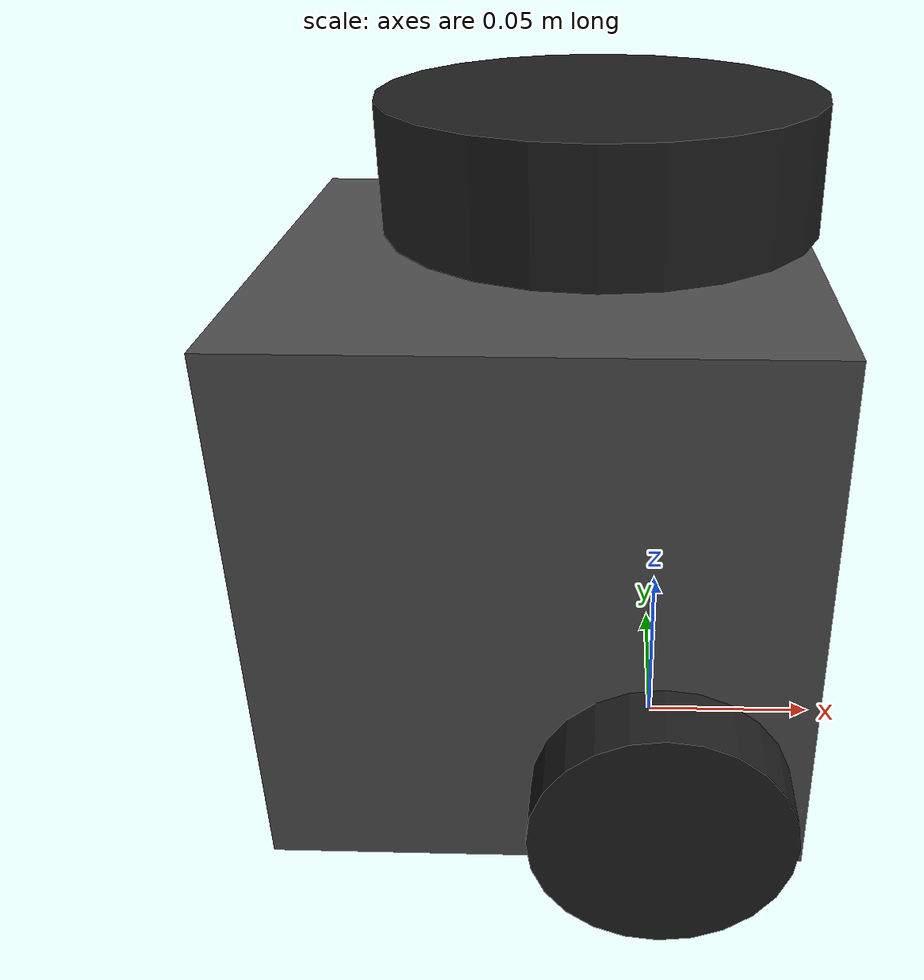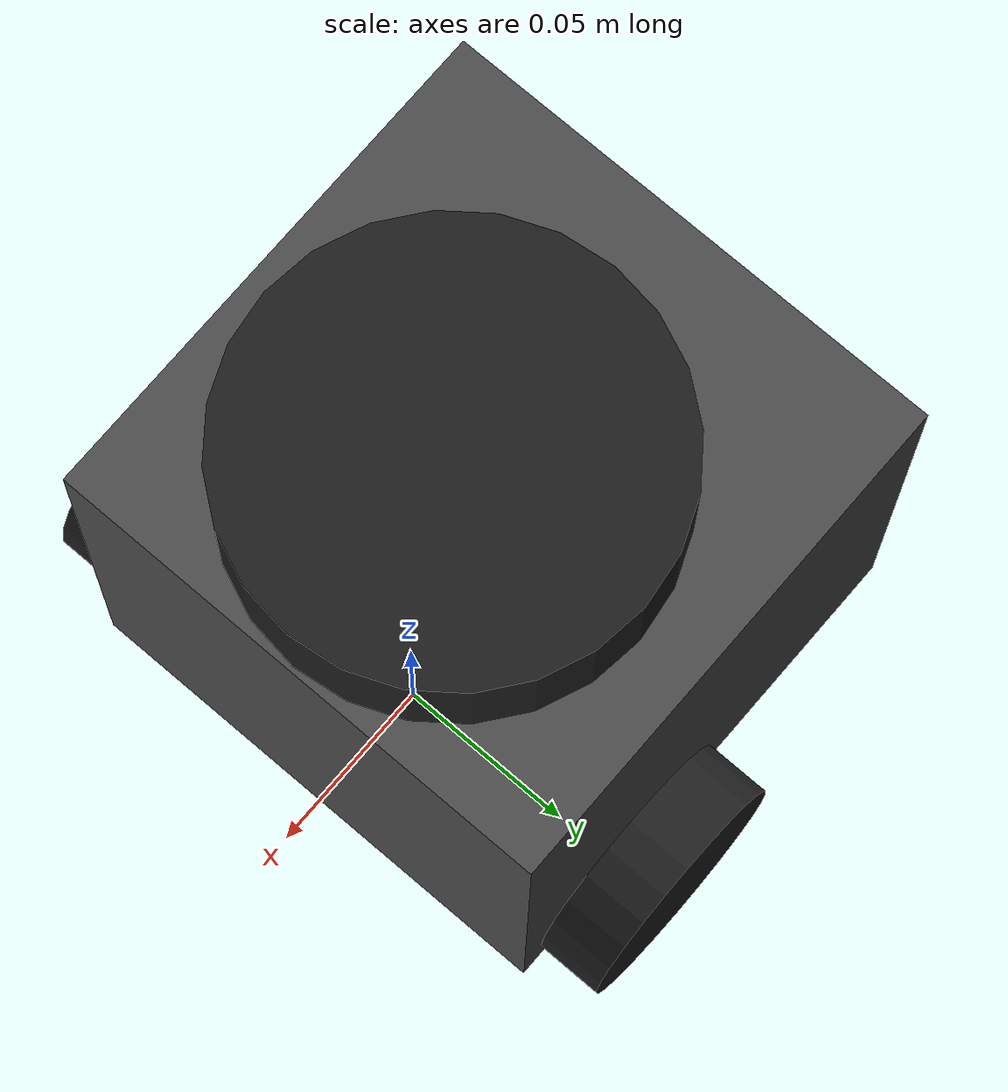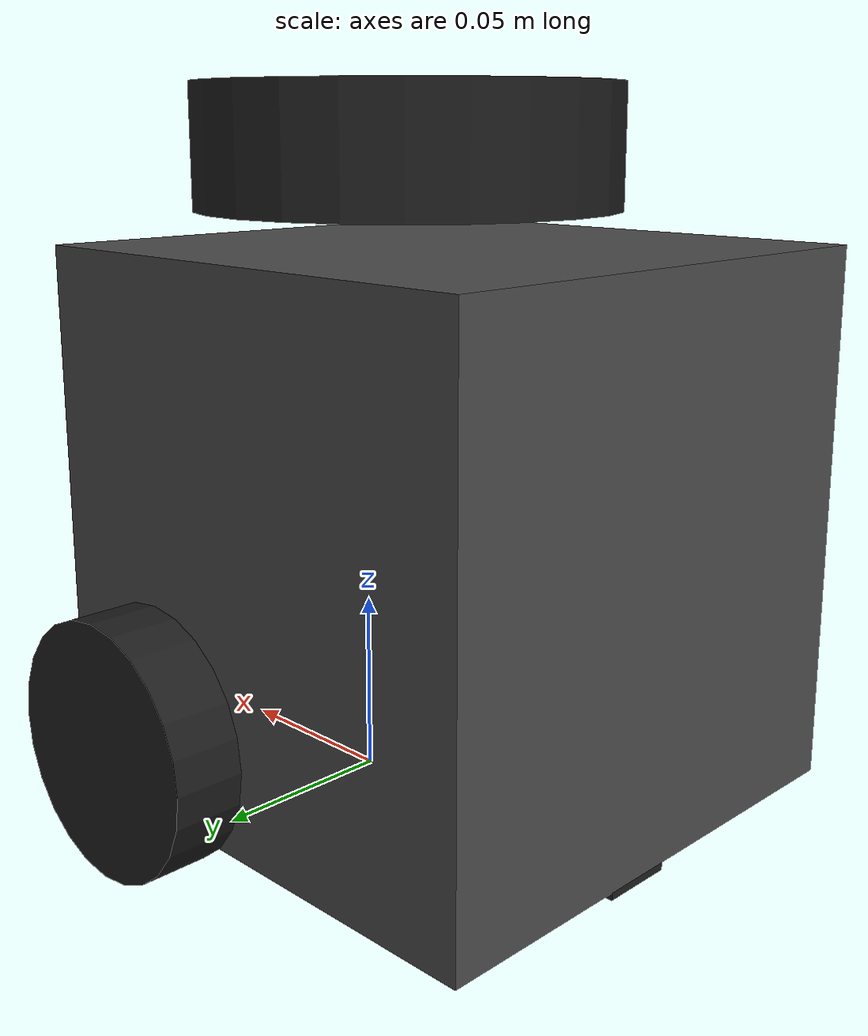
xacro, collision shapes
<?xml version="1.0" ?>
<robot name="turtlebot3_burger" xmlns:xacro="http://ros.org/wiki/xacro">
  <xacro:include filename="$(find blind_motion)/urdf/common_properties.xacro"/>
  <xacro:include filename="$(find blind_motion)/urdf/turtlebot3_burger_gazebo.xacro"/>

  <link name="base_footprint"/>

  <joint name="base_joint" type="fixed">
    <parent link="base_footprint"/>
    <child link="base_link"/>
    <origin xyz="0.0 0.0 0.010" rpy="0 0 0"/>
  </joint>

  <link name="base_link">
    <visual>
      <origin xyz="-0.032 0 0.0" rpy="0 0 0"/>
      <geometry>
        <mesh filename="package://blind_motion/meshes/bases/burger_base.stl" scale="0.001 0.001 0.001"/>
      </geometry>
    </visual>

    <collision>
      <origin xyz="-0.032 0 0.070" rpy="0 0 0"/>
      <geometry>
        <box size="0.140 0.140 0.143"/>
      </geometry>
      <material name="blue"/>
    </collision>

    <inertial>
      <origin xyz="0 0 0" rpy="0 0 0"/>
      <mass value="8.2573504e-01"/>
      <inertia ixx="2.2124416e-03" ixy="-1.2294101e-05" ixz="3.4938785e-05"
               iyy="2.1193702e-03" iyz="-5.0120904e-06"
               izz="2.0064271e-03" />
    </inertial>
  </link>

  <joint name="wheel_left_joint" type="continuous">
    <parent link="base_link"/>
    <child link="wheel_left_link"/>
    <origin xyz="0.0 0.08 0.023" rpy="-1.57 0 0"/>
    <axis xyz="0 0 1"/>
  </joint>

  <link name="wheel_left_link">
    <visual>
      <origin xyz="0 0 0" rpy="1.57 0 0"/>
      <geometry>
        <mesh filename="package://blind_motion/meshes/wheels/left_tire.stl" scale="0.001 0.001 0.001"/>
      </geometry>
      <material name="dark"/>
    </visual>

    <collision>
      <origin xyz="0 0 0" rpy="0 0 0"/>
      <geometry>
        <cylinder length="0.018" radius="0.033"/>
      </geometry>
    </collision>

    <inertial>
      <origin xyz="0 0 0" />
      <mass value="2.8498940e-02" />
      <inertia ixx="1.1175580e-05" ixy="-4.2369783e-11" ixz="-5.9381719e-09"
               iyy="1.1192413e-05" iyz="-1.4400107e-11"
               izz="2.0712558e-05" />
      </inertial>
  </link>

  <joint name="wheel_right_joint" type="continuous">
    <parent link="base_link"/>
    <child link="wheel_right_link"/>
    <origin xyz="0.0 -0.080 0.023" rpy="-1.57 0 0"/>
    <axis xyz="0 0 1"/>
  </joint>

  <link name="wheel_right_link">
    <visual>
      <origin xyz="0 0 0" rpy="1.57 0 0"/>
      <geometry>
        <mesh filename="package://blind_motion/meshes/wheels/right_tire.stl" scale="0.001 0.001 0.001"/>
      </geometry>
      <material name="dark"/>
    </visual>

    <collision>
      <origin xyz="0 0 0" rpy="0 0 0"/>
      <geometry>
        <cylinder length="0.018" radius="0.033"/>
      </geometry>
    </collision>

    <inertial>
      <origin xyz="0 0 0" />
      <mass value="2.8498940e-02" />
      <inertia ixx="1.1175580e-05" ixy="-4.2369783e-11" ixz="-5.9381719e-09"
               iyy="1.1192413e-05" iyz="-1.4400107e-11"
               izz="2.0712558e-05" />
      </inertial>
  </link>

  <joint name="caster_back_joint" type="fixed">
    <parent link="base_link"/>
    <child link="caster_back_link"/>
    <origin xyz="-0.081 0 -0.004" rpy="-1.57 0 0"/>
  </joint>

  <link name="caster_back_link">
    <collision>
      <origin xyz="0 0.001 0" rpy="0 0 0"/>
      <geometry>
        <box size="0.030 0.009 0.020"/>
      </geometry>
    </collision>

    <inertial>
      <origin xyz="0 0 0" />
      <mass value="0.005" />
      <inertia ixx="0.001" ixy="0.0" ixz="0.0"
               iyy="0.001" iyz="0.0"
               izz="0.001" />
    </inertial>
  </link>

  <joint name="scan_joint" type="fixed">
    <parent link="base_link"/>
    <child link="base_scan"/>
    <origin xyz="-0.032 0 0.172" rpy="0 0 0"/>
  </joint>

  <link name="base_scan">
    <visual>
      <origin xyz="0 0 0.0" rpy="0 0 0"/>
      <geometry>
        <mesh filename="package://blind_motion/meshes/sensors/lds.stl" scale="0.001 0.001 0.001"/>
      </geometry>
      <material name="dark"/>
    </visual>

    <collision>
      <origin xyz="0.015 0 -0.0065" rpy="0 0 0"/>
      <geometry>
        <cylinder length="0.0315" radius="0.055"/>
      </geometry>
    </collision>

    <inertial>
      <mass value="0.114" />
      <origin xyz="0 0 0" />
      <inertia ixx="0.001" ixy="0.0" ixz="0.0"
               iyy="0.001" iyz="0.0"
               izz="0.001" />
    </inertial>
  </link>

  <transmission name="wheel_joint_trans">
      <type>transmission_interface/SimpleTransmission</type>
      <joint name="wheel_joint" />
      <actuator name="wheel_joint_motor">
        <hardwareInterface>EffortJointInterface</hardwareInterface>
        <mechanicalReduction>1</mechanicalReduction>
      </actuator>
    </transmission>

  <joint name="camera_joint" type="fixed">
    <parent link="base_link"/>
    <child link="camera_link"/>
    <origin xyz="0.032 0 0.085" rpy="0 0 0"/>  <!--Lo sposto all'estremita del "cubo" che rappresenta il base link-->
  </joint>

  <link name="camera_link">
    <visual>
      <origin xyz="0 0 0.0" rpy="0 1.57 0"/> <!--Must be rotate along its z axis (exiting from the camera to see the images correctly)-->
      <geometry>
        <mesh filename="package://blind_motion/meshes/sensors/RPi_Camera_V2.1.stl" scale="0.001 0.001 0.0005"/>
      </geometry>
      <material name="light_black"/>
    </visual>

    <collision>
      <origin xyz="0 0 0" rpy="0 1.57 0"/>
      <geometry>
        <box size="0.005 0.005 0.005"/>
      </geometry>
      <material name="light_black"/>
    </collision>

    <inertial>
      <mass value="0.000114" />
      <origin xyz="0 0 0" />
      <inertia ixx="0.001" ixy="0.0" ixz="0.0"
               iyy="0.001" iyz="0.0"
               izz="0.001" />
    </inertial>
  </link>

</robot>
